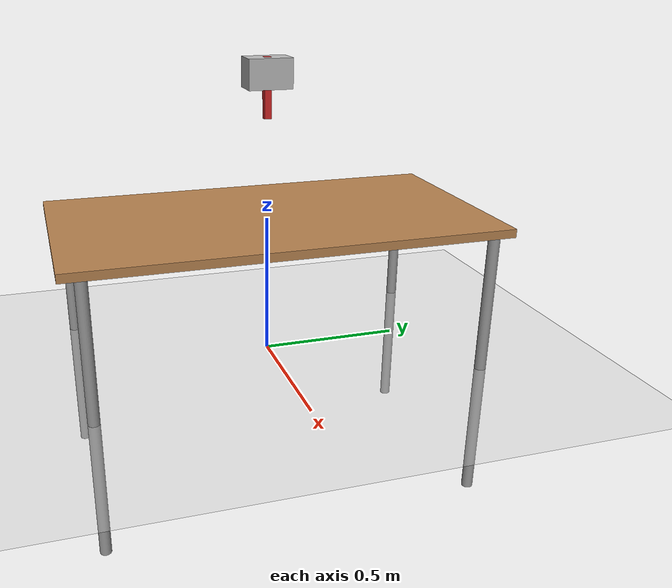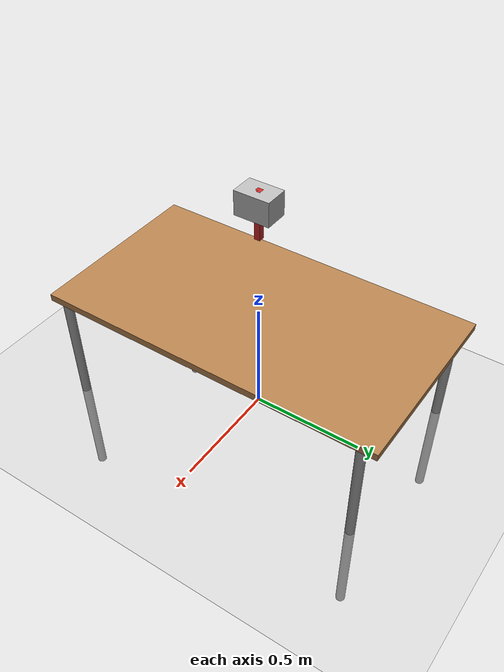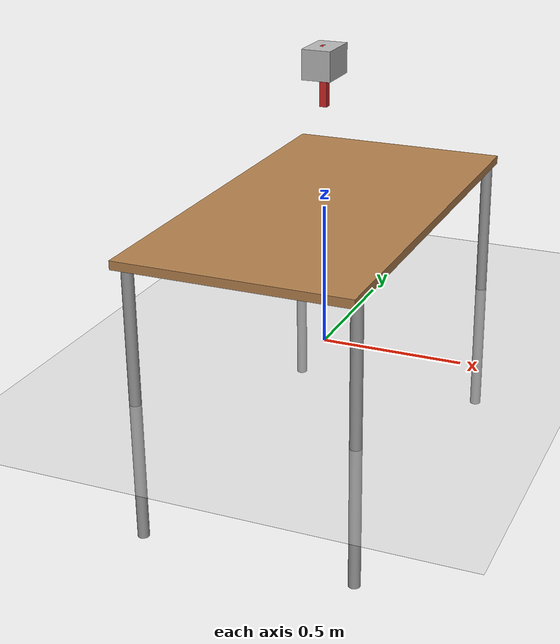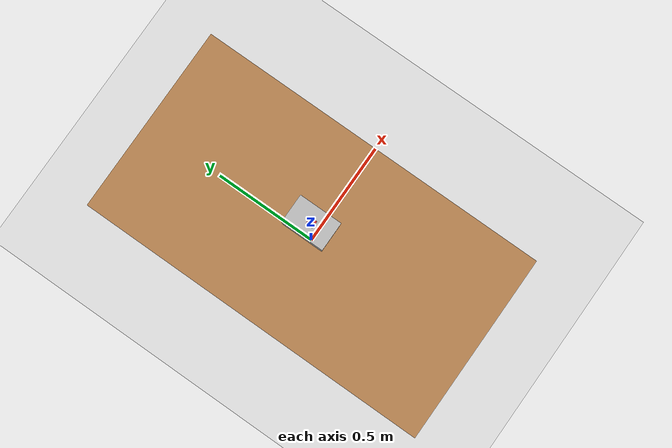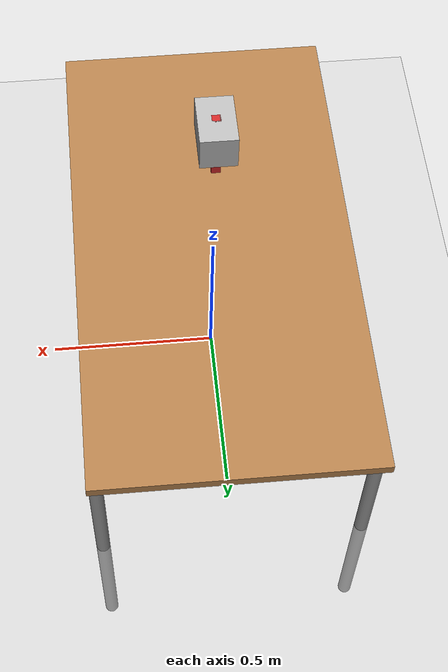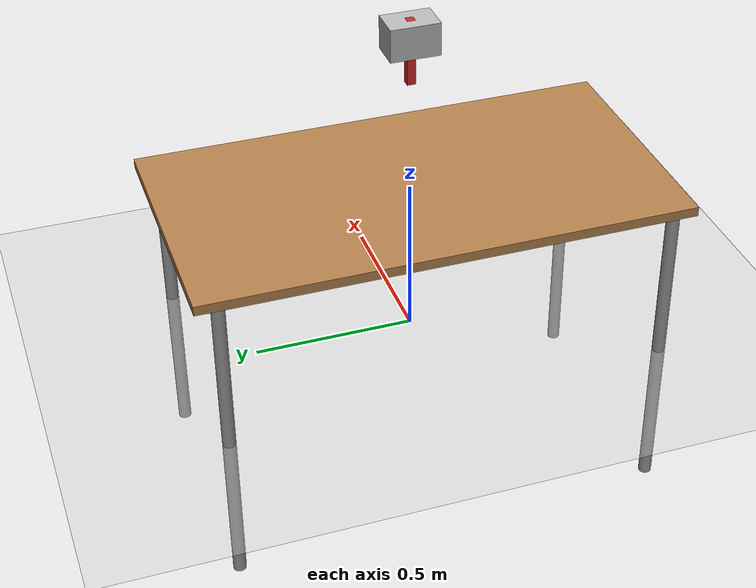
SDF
<sdf version="1.7">
 <world name="default">
  <model name="ground_plane">
   <static>1</static>
   <link name="link">
    <collision name="collision">
     <geometry><plane><normal>0 0 1</normal><size>100 100</size></plane></geometry>
     <surface><friction><ode><mu>100</mu><mu2>50</mu2></ode></friction></surface>
    </collision>
    <visual name="visual">
     <cast_shadows>0</cast_shadows>
     <geometry><plane><normal>0 0 1</normal><size>100 100</size></plane></geometry>
     <material>
      <script><uri>file://media/materials/scripts/gazebo.material</uri><name>Gazebo/Grey</name></script>
     </material>
    </visual>
   </link>
  </model>
  <light name="sun" type="directional">
   <pose>0 0 10 0 -0 0</pose>
   <diffuse>0.8 0.8 0.8 1</diffuse>
   <specular>0.2 0.2 0.2 1</specular>
   <attenuation>
    <range>1000</range>
    <constant>0.9</constant>
    <linear>0.01</linear>
    <quadratic>0.001</quadratic>
   </attenuation>
   <direction>-0.5 0.1 -0.9</direction>
   <spot><inner_angle>0</inner_angle><outer_angle>0</outer_angle><falloff>0</falloff></spot>
  </light>
  <model name="table">
   <static>1</static>
   <link name="link">
    <collision name="surface">
     <pose>0 0 1 0 -0 0</pose>
     <geometry><box><size>1.5 0.8 0.03</size></box></geometry>
     <surface><friction><ode><mu>0.6</mu><mu2>0.6</mu2></ode></friction></surface>
    </collision>
    <visual name="visual1">
     <pose>0 0 1 0 -0 0</pose>
     <geometry><box><size>1.5 0.8 0.03</size></box></geometry>
     <material>
      <script><uri>file://media/materials/scripts/gazebo.material</uri><name>Gazebo/Wood</name></script>
     </material>
    </visual>
    <collision name="front_left_leg">
     <pose>0.68 0.38 0.5 0 -0 0</pose>
     <geometry><cylinder><radius>0.02</radius><length>1</length></cylinder></geometry>
    </collision>
    <visual name="front_left_leg">
     <pose>0.68 0.38 0.5 0 -0 0</pose>
     <geometry><cylinder><radius>0.02</radius><length>1</length></cylinder></geometry>
     <material>
      <script><uri>file://media/materials/scripts/gazebo.material</uri><name>Gazebo/Grey</name></script>
     </material>
    </visual>
    <collision name="front_right_leg">
     <pose>0.68 -0.38 0.5 0 -0 0</pose>
     <geometry><cylinder><radius>0.02</radius><length>1</length></cylinder></geometry>
    </collision>
    <visual name="front_right_leg">
     <pose>0.68 -0.38 0.5 0 -0 0</pose>
     <geometry><cylinder><radius>0.02</radius><length>1</length></cylinder></geometry>
     <material>
      <script><uri>file://media/materials/scripts/gazebo.material</uri><name>Gazebo/Grey</name></script>
     </material>
    </visual>
    <collision name="back_right_leg">
     <pose>-0.68 -0.38 0.5 0 -0 0</pose>
     <geometry><cylinder><radius>0.02</radius><length>1</length></cylinder></geometry>
    </collision>
    <visual name="back_right_leg">
     <pose>-0.68 -0.38 0.5 0 -0 0</pose>
     <geometry><cylinder><radius>0.02</radius><length>1</length></cylinder></geometry>
     <material>
      <script><uri>file://media/materials/scripts/gazebo.material</uri><name>Gazebo/Grey</name></script>
     </material>
    </visual>
    <collision name="back_left_leg">
     <pose>-0.68 0.38 0.5 0 -0 0</pose>
     <geometry><cylinder><radius>0.02</radius><length>1</length></cylinder></geometry>
    </collision>
    <visual name="back_left_leg">
     <pose>-0.68 0.38 0.5 0 -0 0</pose>
     <geometry><cylinder><radius>0.02</radius><length>1</length></cylinder></geometry>
     <material>
      <script><uri>file://media/materials/scripts/gazebo.material</uri><name>Gazebo/Grey</name></script>
     </material>
    </visual>
   </link>
   <pose>0 0 -0.5 0 -0 1.57</pose>
  </model>
  <gravity>0 0 -9.8</gravity>
  <magnetic_field>6e-06 2.3e-05 -4.2e-05</magnetic_field>
  <atmosphere type="adiabatic"/>
  <physics type="ode">
   <max_step_size>0.001</max_step_size>
   <real_time_factor>1</real_time_factor>
   <real_time_update_rate>1000</real_time_update_rate>
  </physics>
  <scene><ambient>0.4 0.4 0.4 1</ambient><background>0.7 0.7 0.7 1</background><shadows>1</shadows></scene>
  <audio><device>default</device></audio>
  <spherical_coordinates>
   <surface_model>EARTH_WGS84</surface_model>
   <latitude_deg>0</latitude_deg>
   <longitude_deg>0</longitude_deg>
   <elevation>0</elevation>
   <heading_deg>0</heading_deg>
  </spherical_coordinates>
  <model name="camera">
   <joint name="world_to_base" type="fixed">
    <pose relative_to="__model__">0 0 0 0 -0 0</pose>
    <parent>world</parent>
    <child>camera_link</child>
   </joint>
   <link name="camera_link">
    <pose relative_to="world_to_base">0 0 0 0 -0 0</pose>
    <inertial>
     <pose>0.025 0 0 0 -0 0</pose>
     <mass>2e-05</mass>
     <inertia>
      <ixx>2e-06</ixx>
      <ixy>0</ixy>
      <ixz>0</ixz>
      <iyy>2.0125e-06</iyy>
      <iyz>0</iyz>
      <izz>2.0125e-06</izz>
     </inertia>
    </inertial>
    <collision name="camera_link_collision"><geometry><box><size>0.1 0.15 0.1</size></box></geometry></collision>
    <collision name="camera_link_fixed_joint_lump__lens_collision_1">
     <pose>0.05 0 0 0 -0 0</pose>
     <geometry><box><size>0.2 0.025 0.025</size></box></geometry>
     <surface><friction><ode><mu>0.2</mu><mu2>0.2</mu2></ode></friction></surface>
    </collision>
    <visual name="camera_link_visual"><geometry><box><size>0.1 0.15 0.1</size></box></geometry></visual>
    <visual name="camera_link_fixed_joint_lump__lens_visual_1">
     <pose>0.05 0 0 0 -0 0</pose>
     <geometry><box><size>0.2 0.025 0.025</size></box></geometry>
     <material>
      <script><name>Gazebo/Red</name><uri>file://media/materials/scripts/gazebo.material</uri></script>
     </material>
    </visual>
    <sensor name="realsense" type="depth">
     <always_on>1</always_on>
     <visualize>1</visualize>
     <update_rate>0</update_rate>
     <camera>
      <horizontal_fov>1.0472</horizontal_fov>
      <image><width>640</width><height>480</height><format>B8G8R8</format></image>
      <clip><near>0.01</near><far>3</far></clip>
     </camera>
     <plugin name="camera_controller" filename="libgazebo_ros_camera.so">
      <baseline>0.2</baseline>
      <alwaysOn>1</alwaysOn>
      <updateRate>0.0</updateRate>
      <cameraName>/realsense</cameraName>
      <imageTopicName>/realsense/color/image_raw</imageTopicName>
      <cameraInfoTopicName>/realsense/color/camera_info</cameraInfoTopicName>
      <depthImageTopicName>/realsense/depth/image_raw</depthImageTopicName>
      <depthImageInfoTopicName>/realsense/depth/camera_info</depthImageInfoTopicName>
      <pointCloudTopicName>/realsense/depth/points</pointCloudTopicName>
      <frameName>camera_link_optical</frameName>
      <pointCloudCutoff>0.1</pointCloudCutoff>
      <pointCloudCutoffMax>3</pointCloudCutoffMax>
      <distortionK1>0</distortionK1>
      <distortionK2>0</distortionK2>
      <distortionK3>0</distortionK3>
      <distortionT1>0</distortionT1>
      <distortionT2>0</distortionT2>
      <CxPrime>0</CxPrime>
      <Cx>0</Cx>
      <Cy>0</Cy>
      <focalLength>0</focalLength>
      <hackBaseline>0</hackBaseline>
     </plugin>
    </sensor>
   </link>
   <pose>-0 -0 1 0 1.57 0</pose>
  </model>
 </world>
</sdf>
